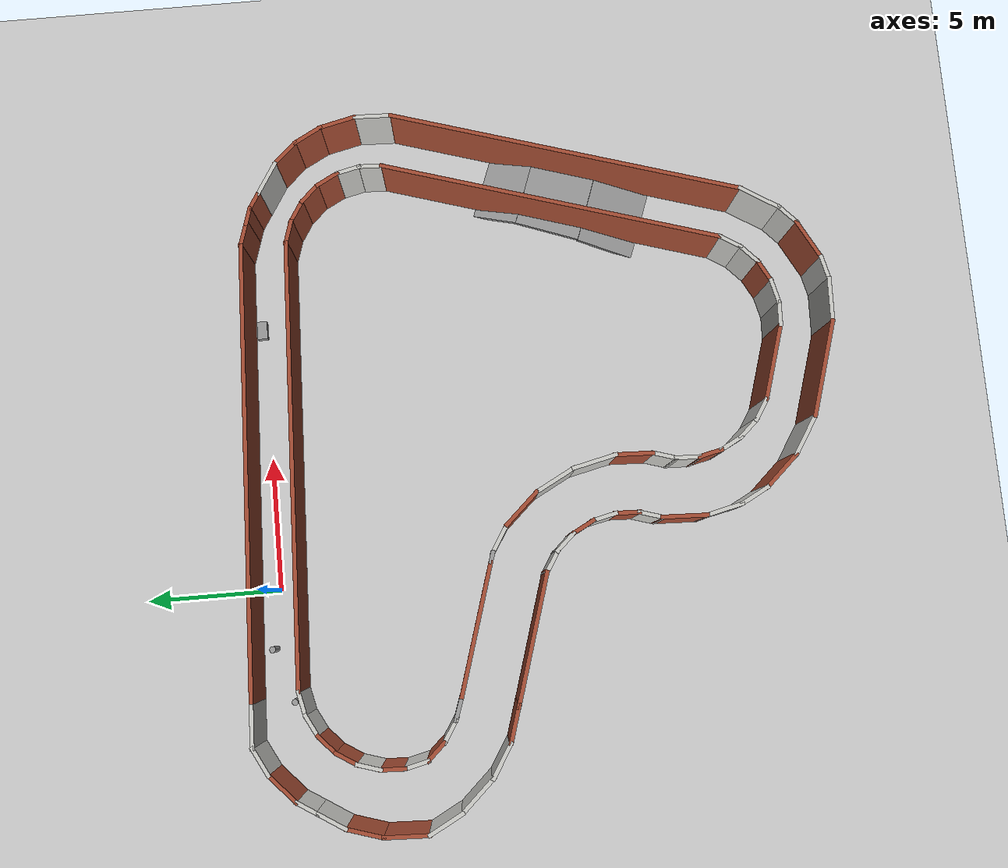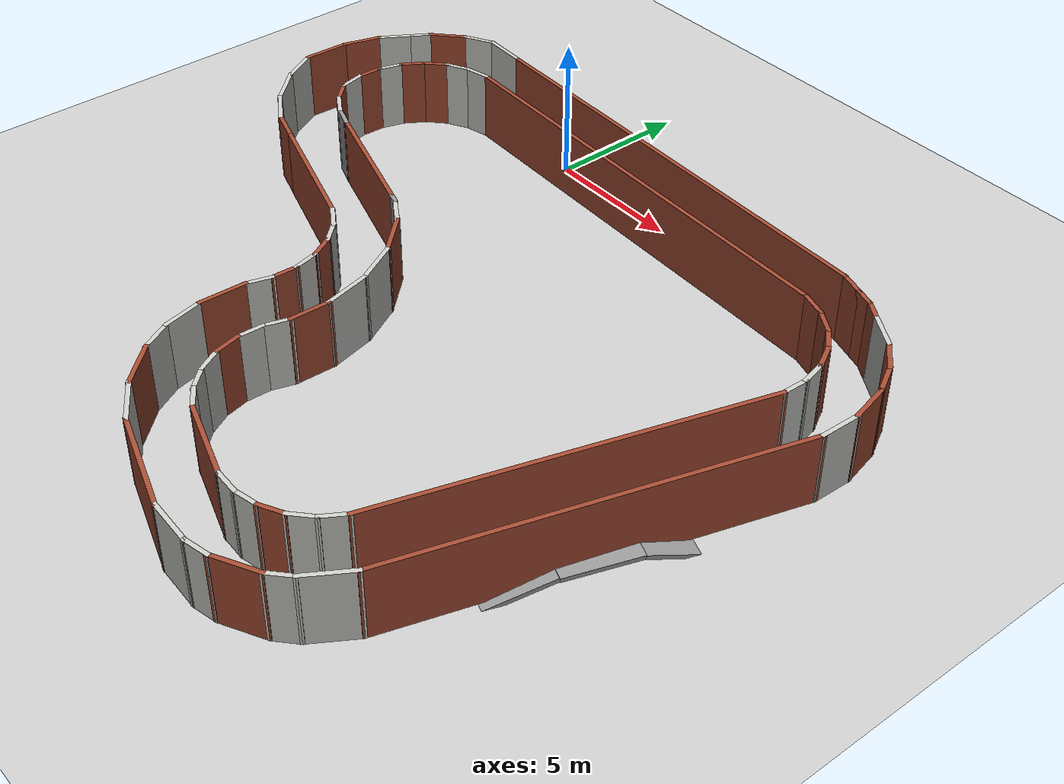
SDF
<sdf version="1.6">
 <world name="default">
  <light name="sun" type="directional">
   <pose>0 0 10 0 -0 0</pose>
   <diffuse>0.8 0.8 0.8 1</diffuse>
   <specular>0.1 0.1 0.1 1</specular>
   <attenuation>
    <range>1000</range>
    <constant>0.9</constant>
    <linear>0.01</linear>
    <quadratic>0.001</quadratic>
   </attenuation>
   <direction>-0.5 0.5 -1</direction>
  </light>
  <model name="ground_plane">
   <static>1</static>
   <link name="link">
    <collision name="collision">
     <geometry><plane><normal>0 0 1</normal><size>100 100</size></plane></geometry>
     <surface><friction><ode><mu>100</mu><mu2>50</mu2></ode></friction></surface>
    </collision>
    <visual name="visual">
     <cast_shadows>0</cast_shadows>
     <geometry><plane><normal>0 0 1</normal><size>100 100</size></plane></geometry>
     <material>
      <script><uri>file://media/materials/scripts/gazebo.material</uri><name>Gazebo/Grey</name></script>
     </material>
    </visual>
   </link>
  </model>
  <gravity>0 0 -9.8</gravity>
  <magnetic_field>6e-06 2.3e-05 -4.2e-05</magnetic_field>
  <atmosphere type="adiabatic"/>
  <physics name="default_physics" default="0" type="ode">
   <max_step_size>0.001</max_step_size>
   <real_time_factor>1</real_time_factor>
   <real_time_update_rate>1000</real_time_update_rate>
  </physics>
  <scene><ambient>0.4 0.4 0.4 1</ambient><background>0.7 0.7 0.7 1</background><shadows>1</shadows></scene>
  <spherical_coordinates>
   <surface_model>EARTH_WGS84</surface_model>
   <latitude_deg>0</latitude_deg>
   <longitude_deg>0</longitude_deg>
   <elevation>0</elevation>
   <heading_deg>0</heading_deg>
  </spherical_coordinates>
  <model name="simple_track">
   <pose>3.08783 -8.17714 0 0 0 -0.298455</pose>
   <link name="Wall_0">
    <collision name="Wall_0_Collision">
     <geometry><box><size>5 0.15 2.5</size></box></geometry>
     <pose>0 0 1.25 0 -0 0</pose>
    </collision>
    <visual name="Wall_0_Visual">
     <pose>0 0 1.25 0 -0 0</pose>
     <geometry><box><size>5 0.15 2.5</size></box></geometry>
     <material>
      <script><uri>file://media/materials/scripts/gazebo.material</uri><name>Gazebo/Bricks</name></script>
      <ambient>1 1 1 1</ambient>
     </material>
    </visual>
    <pose>-5.13544 -0.554128 0 0 -0 0</pose>
   </link>
   <link name="Wall_11">
    <collision name="Wall_11_Collision">
     <geometry><box><size>0.5 0.15 2.5</size></box></geometry>
     <pose>0 0 1.25 0 -0 0</pose>
    </collision>
    <visual name="Wall_11_Visual">
     <pose>0 0 1.25 0 -0 0</pose>
     <geometry><box><size>0.5 0.15 2.5</size></box></geometry>
     <material>
      <script><uri>file://media/materials/scripts/gazebo.material</uri><name>Gazebo/Grey</name></script>
      <ambient>1 1 1 1</ambient>
     </material>
    </visual>
    <pose>-2.53544 -0.554128 0 0 -0 0</pose>
   </link>
   <link name="Wall_15">
    <collision name="Wall_15_Collision">
     <geometry><box><size>1.25 0.15 2.5</size></box></geometry>
     <pose>0 0 1.25 0 -0 0</pose>
    </collision>
    <visual name="Wall_15_Visual">
     <pose>0 0 1.25 0 -0 0</pose>
     <geometry><box><size>1.25 0.15 2.5</size></box></geometry>
     <material>
      <script><uri>file://media/materials/scripts/gazebo.material</uri><name>Gazebo/CeilingTiled</name></script>
      <ambient>1 1 1 1</ambient>
     </material>
    </visual>
    <pose>-1.82919 -0.696478 0 0 0 -0.261799</pose>
   </link>
   <link name="Wall_16">
    <collision name="Wall_16_Collision">
     <geometry><box><size>1.75 0.15 2.5</size></box></geometry>
     <pose>0 0 1.25 0 -0 0</pose>
    </collision>
    <visual name="Wall_16_Visual">
     <pose>0 0 1.25 0 -0 0</pose>
     <geometry><box><size>1.75 0.15 2.5</size></box></geometry>
     <material>
      <script><uri>file://media/materials/scripts/gazebo.material</uri><name>Gazebo/Bricks</name></script>
      <ambient>1 1 1 1</ambient>
     </material>
    </visual>
    <pose>-0.605106 -1.23883 0 0 0 -0.523599</pose>
   </link>
   <link name="Wall_17">
    <collision name="Wall_17_Collision">
     <geometry><box><size>1.75 0.15 2.5</size></box></geometry>
     <pose>0 0 1.25 0 -0 0</pose>
    </collision>
    <visual name="Wall_17_Visual">
     <pose>0 0 1.25 0 -0 0</pose>
     <geometry><box><size>1.75 0.15 2.5</size></box></geometry>
     <material>
      <script><uri>file://media/materials/scripts/gazebo.material</uri><name>Gazebo/CeilingTiled</name></script>
      <ambient>1 1 1 1</ambient>
     </material>
    </visual>
    <pose>0.6534 -2.20451 0 0 0 -0.785398</pose>
   </link>
   <link name="Wall_18">
    <collision name="Wall_18_Collision">
     <geometry><box><size>1.75 0.15 2.5</size></box></geometry>
     <pose>0 0 1.25 0 -0 0</pose>
    </collision>
    <visual name="Wall_18_Visual">
     <pose>0 0 1.25 0 -0 0</pose>
     <geometry><box><size>1.75 0.15 2.5</size></box></geometry>
     <material>
      <script><uri>file://media/materials/scripts/gazebo.material</uri><name>Gazebo/CeilingTiled</name></script>
      <ambient>1 1 1 1</ambient>
     </material>
    </visual>
    <pose>1.61909 -3.46302 0 0 0 -1.0472</pose>
   </link>
   <link name="Wall_19">
    <collision name="Wall_19_Collision">
     <geometry><box><size>1.5 0.15 2.5</size></box></geometry>
     <pose>0 0 1.25 0 -0 0</pose>
    </collision>
    <visual name="Wall_19_Visual">
     <pose>0 0 1.25 0 -0 0</pose>
     <geometry><box><size>1.5 0.15 2.5</size></box></geometry>
     <material>
      <script><uri>file://media/materials/scripts/gazebo.material</uri><name>Gazebo/Bricks</name></script>
      <ambient>1 1 1 1</ambient>
     </material>
    </visual>
    <pose>2.19379 -4.80784 0 0 0 -1.309</pose>
   </link>
   <link name="Wall_2">
    <collision name="Wall_2_Collision">
     <geometry><box><size>5 0.15 2.5</size></box></geometry>
     <pose>0 0 1.25 0 -0 0</pose>
    </collision>
    <visual name="Wall_2_Visual">
     <pose>0 0 1.25 0 -0 0</pose>
     <geometry><box><size>5 0.15 2.5</size></box></geometry>
     <material>
      <script><uri>file://media/materials/scripts/gazebo.material</uri><name>Gazebo/Bricks</name></script>
      <ambient>1 1 1 1</ambient>
     </material>
    </visual>
    <pose>-5.06545 -2.59413 0 0 -0 0</pose>
   </link>
   <link name="Wall_20">
    <collision name="Wall_20_Collision">
     <geometry><box><size>1 0.15 2.5</size></box></geometry>
     <pose>0 0 1.25 0 -0 0</pose>
    </collision>
    <visual name="Wall_20_Visual">
     <pose>0 0 1.25 0 -0 0</pose>
     <geometry><box><size>1 0.15 2.5</size></box></geometry>
     <material>
      <script><uri>file://media/materials/scripts/gazebo.material</uri><name>Gazebo/CeilingTiled</name></script>
      <ambient>1 1 1 1</ambient>
     </material>
    </visual>
    <pose>2.36849 -5.88484 0 0 0 -1.5708</pose>
   </link>
   <link name="Wall_23">
    <collision name="Wall_23_Collision">
     <geometry><box><size>1 0.15 2.5</size></box></geometry>
     <pose>0 0 1.25 0 -0 0</pose>
    </collision>
    <visual name="Wall_23_Visual">
     <pose>0 0 1.25 0 -0 0</pose>
     <geometry><box><size>1 0.15 2.5</size></box></geometry>
     <material>
      <script><uri>file://media/materials/scripts/gazebo.material</uri><name>Gazebo/CeilingTiled</name></script>
      <ambient>1 1 1 1</ambient>
     </material>
    </visual>
    <pose>2.47849 -6.72036 0 0 0 -1.309</pose>
   </link>
   <link name="Wall_24">
    <collision name="Wall_24_Collision">
     <geometry><box><size>1 0.15 2.5</size></box></geometry>
     <pose>0 0 1.25 0 -0 0</pose>
    </collision>
    <visual name="Wall_24_Visual">
     <pose>0 0 1.25 0 -0 0</pose>
     <geometry><box><size>1 0.15 2.5</size></box></geometry>
     <material>
      <script><uri>file://media/materials/scripts/gazebo.material</uri><name>Gazebo/Bricks</name></script>
      <ambient>1 1 1 1</ambient>
     </material>
    </visual>
    <pose>2.80099 -7.49894 0 0 0 -1.0472</pose>
   </link>
   <link name="Wall_25">
    <collision name="Wall_25_Collision">
     <geometry><box><size>1 0.15 2.5</size></box></geometry>
     <pose>0 0 1.25 0 -0 0</pose>
    </collision>
    <visual name="Wall_25_Visual">
     <pose>0 0 1.25 0 -0 0</pose>
     <geometry><box><size>1 0.15 2.5</size></box></geometry>
     <material>
      <script><uri>file://media/materials/scripts/gazebo.material</uri><name>Gazebo/CeilingTiled</name></script>
      <ambient>1 1 1 1</ambient>
     </material>
    </visual>
    <pose>3.31401 -8.16752 0 0 0 -0.785398</pose>
   </link>
   <link name="Wall_26">
    <collision name="Wall_26_Collision">
     <geometry><box><size>1 0.15 2.5</size></box></geometry>
     <pose>0 0 1.25 0 -0 0</pose>
    </collision>
    <visual name="Wall_26_Visual">
     <pose>0 0 1.25 0 -0 0</pose>
     <geometry><box><size>1 0.15 2.5</size></box></geometry>
     <material>
      <script><uri>file://media/materials/scripts/gazebo.material</uri><name>Gazebo/CeilingTiled</name></script>
      <ambient>1 1 1 1</ambient>
     </material>
    </visual>
    <pose>3.98259 -8.68054 0 0 0 -0.523599</pose>
   </link>
   <link name="Wall_27">
    <collision name="Wall_27_Collision">
     <geometry><box><size>1 0.15 2.5</size></box></geometry>
     <pose>0 0 1.25 0 -0 0</pose>
    </collision>
    <visual name="Wall_27_Visual">
     <pose>0 0 1.25 0 -0 0</pose>
     <geometry><box><size>1 0.15 2.5</size></box></geometry>
     <material>
      <script><uri>file://media/materials/scripts/gazebo.material</uri><name>Gazebo/CeilingTiled</name></script>
      <ambient>1 1 1 1</ambient>
     </material>
    </visual>
    <pose>4.76117 -9.00304 0 0 0 -0.261799</pose>
   </link>
   <link name="Wall_28">
    <collision name="Wall_28_Collision">
     <geometry><box><size>3 0.15 2.5</size></box></geometry>
     <pose>0 0 1.25 0 -0 0</pose>
    </collision>
    <visual name="Wall_28_Visual">
     <pose>0 0 1.25 0 -0 0</pose>
     <geometry><box><size>3 0.15 2.5</size></box></geometry>
     <material>
      <script><uri>file://media/materials/scripts/gazebo.material</uri><name>Gazebo/Bricks</name></script>
      <ambient>1 1 1 1</ambient>
     </material>
    </visual>
    <pose>6.59669 -9.11304 0 0 -0 0</pose>
   </link>
   <link name="Wall_29">
    <collision name="Wall_29_Collision">
     <geometry><box><size>1 0.15 2.5</size></box></geometry>
     <pose>0 0 1.25 0 -0 0</pose>
    </collision>
    <visual name="Wall_29_Visual">
     <pose>0 0 1.25 0 -0 0</pose>
     <geometry><box><size>1 0.15 2.5</size></box></geometry>
     <material>
      <script><uri>file://media/materials/scripts/gazebo.material</uri><name>Gazebo/CeilingTiled</name></script>
      <ambient>1 1 1 1</ambient>
     </material>
    </visual>
    <pose>8.4322 -9.00304 0 0 -0 0.261799</pose>
   </link>
   <link name="Wall_30">
    <collision name="Wall_30_Collision">
     <geometry><box><size>1 0.15 2.5</size></box></geometry>
     <pose>0 0 1.25 0 -0 0</pose>
    </collision>
    <visual name="Wall_30_Visual">
     <pose>0 0 1.25 0 -0 0</pose>
     <geometry><box><size>1 0.15 2.5</size></box></geometry>
     <material>
      <script><uri>file://media/materials/scripts/gazebo.material</uri><name>Gazebo/CeilingTiled</name></script>
      <ambient>1 1 1 1</ambient>
     </material>
    </visual>
    <pose>9.21078 -8.68054 0 0 -0 0.523599</pose>
   </link>
   <link name="Wall_31">
    <collision name="Wall_31_Collision">
     <geometry><box><size>1 0.15 2.5</size></box></geometry>
     <pose>0 0 1.25 0 -0 0</pose>
    </collision>
    <visual name="Wall_31_Visual">
     <pose>0 0 1.25 0 -0 0</pose>
     <geometry><box><size>1 0.15 2.5</size></box></geometry>
     <material>
      <script><uri>file://media/materials/scripts/gazebo.material</uri><name>Gazebo/Bricks</name></script>
      <ambient>1 1 1 1</ambient>
     </material>
    </visual>
    <pose>9.87936 -8.16752 0 0 -0 0.785398</pose>
   </link>
   <link name="Wall_32">
    <collision name="Wall_32_Collision">
     <geometry><box><size>1 0.15 2.5</size></box></geometry>
     <pose>0 0 1.25 0 -0 0</pose>
    </collision>
    <visual name="Wall_32_Visual">
     <pose>0 0 1.25 0 -0 0</pose>
     <geometry><box><size>1 0.15 2.5</size></box></geometry>
     <material>
      <script><uri>file://media/materials/scripts/gazebo.material</uri><name>Gazebo/CeilingTiled</name></script>
      <ambient>1 1 1 1</ambient>
     </material>
    </visual>
    <pose>10.3924 -7.49894 0 0 -0 1.0472</pose>
   </link>
   <link name="Wall_33">
    <collision name="Wall_33_Collision">
     <geometry><box><size>1 0.15 2.5</size></box></geometry>
     <pose>0 0 1.25 0 -0 0</pose>
    </collision>
    <visual name="Wall_33_Visual">
     <pose>0 0 1.25 0 -0 0</pose>
     <geometry><box><size>1 0.15 2.5</size></box></geometry>
     <material>
      <script><uri>file://media/materials/scripts/gazebo.material</uri><name>Gazebo/CeilingTiled</name></script>
      <ambient>1 1 1 1</ambient>
     </material>
    </visual>
    <pose>10.7149 -6.72036 0 0 -0 1.309</pose>
   </link>
   <link name="Wall_34">
    <collision name="Wall_34_Collision">
     <geometry><box><size>13 0.15 2.5</size></box></geometry>
     <pose>0 0 1.25 0 -0 0</pose>
    </collision>
    <visual name="Wall_34_Visual">
     <pose>0 0 1.25 0 -0 0</pose>
     <geometry><box><size>13 0.15 2.5</size></box></geometry>
     <material>
      <script><uri>file://media/materials/scripts/gazebo.material</uri><name>Gazebo/Bricks</name></script>
      <ambient>1 1 1 1</ambient>
     </material>
    </visual>
    <pose>10.8249 0.11516 0 0 -0 1.5708</pose>
   </link>
   <link name="Wall_35">
    <collision name="Wall_35_Collision">
     <geometry><box><size>1 0.15 2.5</size></box></geometry>
     <pose>0 0 1.25 0 -0 0</pose>
    </collision>
    <visual name="Wall_35_Visual">
     <pose>0 0 1.25 0 -0 0</pose>
     <geometry><box><size>1 0.15 2.5</size></box></geometry>
     <material>
      <script><uri>file://media/materials/scripts/gazebo.material</uri><name>Gazebo/CeilingTiled</name></script>
      <ambient>1 1 1 1</ambient>
     </material>
    </visual>
    <pose>10.7149 6.95068 0 0 -0 1.8326</pose>
   </link>
   <link name="Wall_36">
    <collision name="Wall_36_Collision">
     <geometry><box><size>1 0.15 2.5</size></box></geometry>
     <pose>0 0 1.25 0 -0 0</pose>
    </collision>
    <visual name="Wall_36_Visual">
     <pose>0 0 1.25 0 -0 0</pose>
     <geometry><box><size>1 0.15 2.5</size></box></geometry>
     <material>
      <script><uri>file://media/materials/scripts/gazebo.material</uri><name>Gazebo/CeilingTiled</name></script>
      <ambient>1 1 1 1</ambient>
     </material>
    </visual>
    <pose>10.3924 7.72926 0 0 -0 2.0944</pose>
   </link>
   <link name="Wall_37">
    <collision name="Wall_37_Collision">
     <geometry><box><size>1 0.15 2.5</size></box></geometry>
     <pose>0 0 1.25 0 -0 0</pose>
    </collision>
    <visual name="Wall_37_Visual">
     <pose>0 0 1.25 0 -0 0</pose>
     <geometry><box><size>1 0.15 2.5</size></box></geometry>
     <material>
      <script><uri>file://media/materials/scripts/gazebo.material</uri><name>Gazebo/Bricks</name></script>
      <ambient>1 1 1 1</ambient>
     </material>
    </visual>
    <pose>9.87936 8.39784 0 0 -0 2.35619</pose>
   </link>
   <link name="Wall_38">
    <collision name="Wall_38_Collision">
     <geometry><box><size>1 0.15 2.5</size></box></geometry>
     <pose>0 0 1.25 0 -0 0</pose>
    </collision>
    <visual name="Wall_38_Visual">
     <pose>0 0 1.25 0 -0 0</pose>
     <geometry><box><size>1 0.15 2.5</size></box></geometry>
     <material>
      <script><uri>file://media/materials/scripts/gazebo.material</uri><name>Gazebo/Bricks</name></script>
      <ambient>1 1 1 1</ambient>
     </material>
    </visual>
    <pose>9.21078 8.91086 0 0 -0 2.61799</pose>
   </link>
   <link name="Wall_39">
    <collision name="Wall_39_Collision">
     <geometry><box><size>1 0.15 2.5</size></box></geometry>
     <pose>0 0 1.25 0 -0 0</pose>
    </collision>
    <visual name="Wall_39_Visual">
     <pose>0 0 1.25 0 -0 0</pose>
     <geometry><box><size>1 0.15 2.5</size></box></geometry>
     <material>
      <script><uri>file://media/materials/scripts/gazebo.material</uri><name>Gazebo/Bricks</name></script>
      <ambient>1 1 1 1</ambient>
     </material>
    </visual>
    <pose>8.4322 9.23336 0 0 -0 2.87979</pose>
   </link>
   <link name="Wall_4">
    <collision name="Wall_4_Collision">
     <geometry><box><size>1 0.15 2.5</size></box></geometry>
     <pose>0 0 1.25 0 -0 0</pose>
    </collision>
    <visual name="Wall_4_Visual">
     <pose>0 0 1.25 0 -0 0</pose>
     <geometry><box><size>1 0.15 2.5</size></box></geometry>
     <material>
      <script><uri>file://media/materials/scripts/gazebo.material</uri><name>Gazebo/CeilingTiled</name></script>
      <ambient>1 1 1 1</ambient>
     </material>
    </visual>
    <pose>-2.22993 -2.70413 0 0 0 -0.261799</pose>
   </link>
   <link name="Wall_40">
    <collision name="Wall_40_Collision">
     <geometry><box><size>1 0.15 2.5</size></box></geometry>
     <pose>0 0 1.25 0 -0 0</pose>
    </collision>
    <visual name="Wall_40_Visual">
     <pose>0 0 1.25 0 -0 0</pose>
     <geometry><box><size>1 0.15 2.5</size></box></geometry>
     <material>
      <script><uri>file://media/materials/scripts/gazebo.material</uri><name>Gazebo/Bricks</name></script>
      <ambient>1 1 1 1</ambient>
     </material>
    </visual>
    <pose>7.59669 9.34336 0 0 -0 3.14159</pose>
   </link>
   <link name="Wall_41">
    <collision name="Wall_41_Collision">
     <geometry><box><size>16.5 0.15 2.5</size></box></geometry>
     <pose>0 0 1.25 0 -0 0</pose>
    </collision>
    <visual name="Wall_41_Visual">
     <pose>0 0 1.25 0 -0 0</pose>
     <geometry><box><size>16.5 0.15 2.5</size></box></geometry>
     <material>
      <script><uri>file://media/materials/scripts/gazebo.material</uri><name>Gazebo/Bricks</name></script>
      <ambient>1 1 1 1</ambient>
     </material>
    </visual>
    <pose>-0.724757 7.22751 0 0 0 -2.87979</pose>
   </link>
   <link name="Wall_42">
    <collision name="Wall_42_Collision">
     <geometry><box><size>1 0.15 2.5</size></box></geometry>
     <pose>0 0 1.25 0 -0 0</pose>
    </collision>
    <visual name="Wall_42_Visual">
     <pose>0 0 1.25 0 -0 0</pose>
     <geometry><box><size>1 0.15 2.5</size></box></geometry>
     <material>
      <script><uri>file://media/materials/scripts/gazebo.material</uri><name>Gazebo/CeilingTiled</name></script>
      <ambient>1 1 1 1</ambient>
     </material>
    </visual>
    <pose>-8.98926 4.89916 0 0 0 -2.61799</pose>
   </link>
   <link name="Wall_43">
    <collision name="Wall_43_Collision">
     <geometry><box><size>1 0.15 2.5</size></box></geometry>
     <pose>0 0 1.25 0 -0 0</pose>
    </collision>
    <visual name="Wall_43_Visual">
     <pose>0 0 1.25 0 -0 0</pose>
     <geometry><box><size>1 0.15 2.5</size></box></geometry>
     <material>
      <script><uri>file://media/materials/scripts/gazebo.material</uri><name>Gazebo/CeilingTiled</name></script>
      <ambient>1 1 1 1</ambient>
     </material>
    </visual>
    <pose>-9.65784 4.38614 0 0 0 -2.35619</pose>
   </link>
   <link name="Wall_44">
    <collision name="Wall_44_Collision">
     <geometry><box><size>1 0.15 2.5</size></box></geometry>
     <pose>0 0 1.25 0 -0 0</pose>
    </collision>
    <visual name="Wall_44_Visual">
     <pose>0 0 1.25 0 -0 0</pose>
     <geometry><box><size>1 0.15 2.5</size></box></geometry>
     <material>
      <script><uri>file://media/materials/scripts/gazebo.material</uri><name>Gazebo/Bricks</name></script>
      <ambient>1 1 1 1</ambient>
     </material>
    </visual>
    <pose>-10.1709 3.71756 0 0 0 -2.0944</pose>
   </link>
   <link name="Wall_45">
    <collision name="Wall_45_Collision">
     <geometry><box><size>1 0.15 2.5</size></box></geometry>
     <pose>0 0 1.25 0 -0 0</pose>
    </collision>
    <visual name="Wall_45_Visual">
     <pose>0 0 1.25 0 -0 0</pose>
     <geometry><box><size>1 0.15 2.5</size></box></geometry>
     <material>
      <script><uri>file://media/materials/scripts/gazebo.material</uri><name>Gazebo/Bricks</name></script>
      <ambient>1 1 1 1</ambient>
     </material>
    </visual>
    <pose>-10.4934 2.93898 0 0 0 -1.8326</pose>
   </link>
   <link name="Wall_46">
    <collision name="Wall_46_Collision">
     <geometry><box><size>1 0.15 2.5</size></box></geometry>
     <pose>0 0 1.25 0 -0 0</pose>
    </collision>
    <visual name="Wall_46_Visual">
     <pose>0 0 1.25 0 -0 0</pose>
     <geometry><box><size>1 0.15 2.5</size></box></geometry>
     <material>
      <script><uri>file://media/materials/scripts/gazebo.material</uri><name>Gazebo/CeilingTiled</name></script>
      <ambient>1 1 1 1</ambient>
     </material>
    </visual>
    <pose>-10.6034 2.10346 0 0 0 -1.5708</pose>
   </link>
   <link name="Wall_47">
    <collision name="Wall_47_Collision">
     <geometry><box><size>1 0.15 2.5</size></box></geometry>
     <pose>0 0 1.25 0 -0 0</pose>
    </collision>
    <visual name="Wall_47_Visual">
     <pose>0 0 1.25 0 -0 0</pose>
     <geometry><box><size>1 0.15 2.5</size></box></geometry>
     <material>
      <script><uri>file://media/materials/scripts/gazebo.material</uri><name>Gazebo/Bricks</name></script>
      <ambient>1 1 1 1</ambient>
     </material>
    </visual>
    <pose>-10.4934 1.26795 0 0 0 -1.309</pose>
   </link>
   <link name="Wall_48">
    <collision name="Wall_48_Collision">
     <geometry><box><size>1 0.15 2.5</size></box></geometry>
     <pose>0 0 1.25 0 -0 0</pose>
    </collision>
    <visual name="Wall_48_Visual">
     <pose>0 0 1.25 0 -0 0</pose>
     <geometry><box><size>1 0.15 2.5</size></box></geometry>
     <material>
      <script><uri>file://media/materials/scripts/gazebo.material</uri><name>Gazebo/CeilingTiled</name></script>
      <ambient>1 1 1 1</ambient>
     </material>
    </visual>
    <pose>-10.1709 0.489367 0 0 0 -1.0472</pose>
   </link>
   <link name="Wall_49">
    <collision name="Wall_49_Collision">
     <geometry><box><size>1 0.15 2.5</size></box></geometry>
     <pose>0 0 1.25 0 -0 0</pose>
    </collision>
    <visual name="Wall_49_Visual">
     <pose>0 0 1.25 0 -0 0</pose>
     <geometry><box><size>1 0.15 2.5</size></box></geometry>
     <material>
      <script><uri>file://media/materials/scripts/gazebo.material</uri><name>Gazebo/Bricks</name></script>
      <ambient>1 1 1 1</ambient>
     </material>
    </visual>
    <pose>-9.5903 -0.091194 0 0 0 -0.523599</pose>
   </link>
   <link name="Wall_5">
    <collision name="Wall_5_Collision">
     <geometry><box><size>1 0.15 2.5</size></box></geometry>
     <pose>0 0 1.25 0 -0 0</pose>
    </collision>
    <visual name="Wall_5_Visual">
     <pose>0 0 1.25 0 -0 0</pose>
     <geometry><box><size>1 0.15 2.5</size></box></geometry>
     <material>
      <script><uri>file://media/materials/scripts/gazebo.material</uri><name>Gazebo/CeilingTiled</name></script>
      <ambient>1 1 1 1</ambient>
     </material>
    </visual>
    <pose>-1.45135 -3.02662 0 0 0 -0.523599</pose>
   </link>
   <link name="Wall_50">
    <collision name="Wall_50_Collision">
     <geometry><box><size>1 0.15 2.5</size></box></geometry>
     <pose>0 0 1.25 0 -0 0</pose>
    </collision>
    <visual name="Wall_50_Visual">
     <pose>0 0 1.25 0 -0 0</pose>
     <geometry><box><size>1 0.15 2.5</size></box></geometry>
     <material>
      <script><uri>file://media/materials/scripts/gazebo.material</uri><name>Gazebo/CeilingTiled</name></script>
      <ambient>1 1 1 1</ambient>
     </material>
    </visual>
    <pose>-8.81172 -0.413692 0 0 0 -0.261799</pose>
   </link>
   <link name="Wall_51">
    <collision name="Wall_51_Collision">
     <geometry><box><size>0.991311 0.15 2.5</size></box></geometry>
     <pose>0 0 1.25 0 -0 0</pose>
    </collision>
    <visual name="Wall_51_Visual">
     <pose>0 0 1.25 0 -0 0</pose>
     <geometry><box><size>0.991311 0.15 2.5</size></box></geometry>
     <material>
      <script><uri>file://media/materials/scripts/gazebo.material</uri><name>Gazebo/Grey</name></script>
      <ambient>1 1 1 1</ambient>
     </material>
    </visual>
    <pose>-7.98082 -0.538909 0 0 0 -0.036187</pose>
   </link>
   <link name="Wall_53">
    <collision name="Wall_53_Collision">
     <geometry><box><size>1.75 0.15 2.5</size></box></geometry>
     <pose>0 0 1.25 0 -0 0</pose>
    </collision>
    <visual name="Wall_53_Visual">
     <pose>0 0 1.25 0 -0 0</pose>
     <geometry><box><size>1.75 0.15 2.5</size></box></geometry>
     <material>
      <script><uri>file://media/materials/scripts/gazebo.material</uri><name>Gazebo/Bricks</name></script>
      <ambient>1 1 1 1</ambient>
     </material>
    </visual>
    <pose>0.369806 -7.02006 0 0 0 -1.309</pose>
   </link>
   <link name="Wall_54">
    <collision name="Wall_54_Collision">
     <geometry><box><size>1.5 0.15 2.5</size></box></geometry>
     <pose>0 0 1.25 0 -0 0</pose>
    </collision>
    <visual name="Wall_54_Visual">
     <pose>0 0 1.25 0 -0 0</pose>
     <geometry><box><size>1.5 0.15 2.5</size></box></geometry>
     <material>
      <script><uri>file://media/materials/scripts/gazebo.material</uri><name>Gazebo/CeilingTiled</name></script>
      <ambient>1 1 1 1</ambient>
     </material>
    </visual>
    <pose>0.914361 -8.37737 0 0 0 -1.0472</pose>
   </link>
   <link name="Wall_55">
    <collision name="Wall_55_Collision">
     <geometry><box><size>1.25 0.15 2.5</size></box></geometry>
     <pose>0 0 1.25 0 -0 0</pose>
    </collision>
    <visual name="Wall_55_Visual">
     <pose>0 0 1.25 0 -0 0</pose>
     <geometry><box><size>1.25 0.15 2.5</size></box></geometry>
     <material>
      <script><uri>file://media/materials/scripts/gazebo.material</uri><name>Gazebo/CeilingTiled</name></script>
      <ambient>1 1 1 1</ambient>
     </material>
    </visual>
    <pose>1.64077 -9.35085 0 0 0 -0.785398</pose>
   </link>
   <link name="Wall_56">
    <collision name="Wall_56_Collision">
     <geometry><box><size>1.75 0.15 2.5</size></box></geometry>
     <pose>0 0 1.25 0 -0 0</pose>
    </collision>
    <visual name="Wall_56_Visual">
     <pose>0 0 1.25 0 -0 0</pose>
     <geometry><box><size>1.75 0.15 2.5</size></box></geometry>
     <material>
      <script><uri>file://media/materials/scripts/gazebo.material</uri><name>Gazebo/Bricks</name></script>
      <ambient>1 1 1 1</ambient>
     </material>
    </visual>
    <pose>2.7225 -10.1398 0 0 0 -0.523599</pose>
   </link>
   <link name="Wall_57">
    <collision name="Wall_57_Collision">
     <geometry><box><size>1.75 0.15 2.5</size></box></geometry>
     <pose>0 0 1.25 0 -0 0</pose>
    </collision>
    <visual name="Wall_57_Visual">
     <pose>0 0 1.25 0 -0 0</pose>
     <geometry><box><size>1.75 0.15 2.5</size></box></geometry>
     <material>
      <script><uri>file://media/materials/scripts/gazebo.material</uri><name>Gazebo/CeilingTiled</name></script>
      <ambient>1 1 1 1</ambient>
     </material>
    </visual>
    <pose>4.18806 -10.7468 0 0 0 -0.261799</pose>
   </link>
   <link name="Wall_58">
    <collision name="Wall_58_Collision">
     <geometry><box><size>3.75 0.15 2.5</size></box></geometry>
     <pose>0 0 1.25 0 -0 0</pose>
    </collision>
    <visual name="Wall_58_Visual">
     <pose>0 0 1.25 0 -0 0</pose>
     <geometry><box><size>3.75 0.15 2.5</size></box></geometry>
     <material>
      <script><uri>file://media/materials/scripts/gazebo.material</uri><name>Gazebo/Bricks</name></script>
      <ambient>1 1 1 1</ambient>
     </material>
    </visual>
    <pose>6.7608 -10.9539 0 0 -0 0</pose>
   </link>
   <link name="Wall_59">
    <collision name="Wall_59_Collision">
     <geometry><box><size>1.75 0.15 2.5</size></box></geometry>
     <pose>0 0 1.25 0 -0 0</pose>
    </collision>
    <visual name="Wall_59_Visual">
     <pose>0 0 1.25 0 -0 0</pose>
     <geometry><box><size>1.75 0.15 2.5</size></box></geometry>
     <material>
      <script><uri>file://media/materials/scripts/gazebo.material</uri><name>Gazebo/CeilingTiled</name></script>
      <ambient>1 1 1 1</ambient>
     </material>
    </visual>
    <pose>9.33354 -10.7468 0 0 -0 0.261799</pose>
   </link>
   <link name="Wall_6">
    <collision name="Wall_6_Collision">
     <geometry><box><size>1 0.15 2.5</size></box></geometry>
     <pose>0 0 1.25 0 -0 0</pose>
    </collision>
    <visual name="Wall_6_Visual">
     <pose>0 0 1.25 0 -0 0</pose>
     <geometry><box><size>1 0.15 2.5</size></box></geometry>
     <material>
      <script><uri>file://media/materials/scripts/gazebo.material</uri><name>Gazebo/Bricks</name></script>
      <ambient>1 1 1 1</ambient>
     </material>
    </visual>
    <pose>-0.782766 -3.53964 0 0 0 -0.785398</pose>
   </link>
   <link name="Wall_60">
    <collision name="Wall_60_Collision">
     <geometry><box><size>1 0.15 2.5</size></box></geometry>
     <pose>0 0 1.25 0 -0 0</pose>
    </collision>
    <visual name="Wall_60_Visual">
     <pose>0 0 1.25 0 -0 0</pose>
     <geometry><box><size>1 0.15 2.5</size></box></geometry>
     <material>
      <script><uri>file://media/materials/scripts/gazebo.material</uri><name>Gazebo/CeilingTiled</name></script>
      <ambient>1 1 1 1</ambient>
     </material>
    </visual>
    <pose>10.4743 -10.3273 0 0 -0 0.523599</pose>
   </link>
   <link name="Wall_61">
    <collision name="Wall_61_Collision">
     <geometry><box><size>1.75 0.15 2.5</size></box></geometry>
     <pose>0 0 1.25 0 -0 0</pose>
    </collision>
    <visual name="Wall_61_Visual">
     <pose>0 0 1.25 0 -0 0</pose>
     <geometry><box><size>1.75 0.15 2.5</size></box></geometry>
     <material>
      <script><uri>file://media/materials/scripts/gazebo.material</uri><name>Gazebo/Bricks</name></script>
      <ambient>1 1 1 1</ambient>
     </material>
    </visual>
    <pose>11.4081 -9.54907 0 0 -0 0.785398</pose>
   </link>
   <link name="Wall_62">
    <collision name="Wall_62_Collision">
     <geometry><box><size>1 0.15 2.5</size></box></geometry>
     <pose>0 0 1.25 0 -0 0</pose>
    </collision>
    <visual name="Wall_62_Visual">
     <pose>0 0 1.25 0 -0 0</pose>
     <geometry><box><size>1 0.15 2.5</size></box></geometry>
     <material>
      <script><uri>file://media/materials/scripts/gazebo.material</uri><name>Gazebo/CeilingTiled</name></script>
      <ambient>1 1 1 1</ambient>
     </material>
    </visual>
    <pose>12.1863 -8.61533 0 0 -0 1.0472</pose>
   </link>
   <link name="Wall_63">
    <collision name="Wall_63_Collision">
     <geometry><box><size>1.75 0.15 2.5</size></box></geometry>
     <pose>0 0 1.25 0 -0 0</pose>
    </collision>
    <visual name="Wall_63_Visual">
     <pose>0 0 1.25 0 -0 0</pose>
     <geometry><box><size>1.75 0.15 2.5</size></box></geometry>
     <material>
      <script><uri>file://media/materials/scripts/gazebo.material</uri><name>Gazebo/CeilingTiled</name></script>
      <ambient>1 1 1 1</ambient>
     </material>
    </visual>
    <pose>12.6058 -7.47452 0 0 -0 1.309</pose>
   </link>
   <link name="Wall_64">
    <collision name="Wall_64_Collision">
     <geometry><box><size>13.5 0.15 2.5</size></box></geometry>
     <pose>0 0 1.25 0 -0 0</pose>
    </collision>
    <visual name="Wall_64_Visual">
     <pose>0 0 1.25 0 -0 0</pose>
     <geometry><box><size>13.5 0.15 2.5</size></box></geometry>
     <material>
      <script><uri>file://media/materials/scripts/gazebo.material</uri><name>Gazebo/Bricks</name></script>
      <ambient>1 1 1 1</ambient>
     </material>
    </visual>
    <pose>12.8129 -0.026783 0 0 -0 1.5708</pose>
   </link>
   <link name="Wall_65">
    <collision name="Wall_65_Collision">
     <geometry><box><size>1.5 0.15 2.5</size></box></geometry>
     <pose>0 0 1.25 0 -0 0</pose>
    </collision>
    <visual name="Wall_65_Visual">
     <pose>0 0 1.25 0 -0 0</pose>
     <geometry><box><size>1.5 0.15 2.5</size></box></geometry>
     <material>
      <script><uri>file://media/materials/scripts/gazebo.material</uri><name>Gazebo/CeilingTiled</name></script>
      <ambient>1 1 1 1</ambient>
     </material>
    </visual>
    <pose>12.6382 7.30022 0 0 -0 1.8326</pose>
   </link>
   <link name="Wall_66">
    <collision name="Wall_66_Collision">
     <geometry><box><size>1.5 0.15 2.5</size></box></geometry>
     <pose>0 0 1.25 0 -0 0</pose>
    </collision>
    <visual name="Wall_66_Visual">
     <pose>0 0 1.25 0 -0 0</pose>
     <geometry><box><size>1.5 0.15 2.5</size></box></geometry>
     <material>
      <script><uri>file://media/materials/scripts/gazebo.material</uri><name>Gazebo/Bricks</name></script>
      <ambient>1 1 1 1</ambient>
     </material>
    </visual>
    <pose>12.126 8.53679 0 0 -0 2.0944</pose>
   </link>
   <link name="Wall_67">
    <collision name="Wall_67_Collision">
     <geometry><box><size>1.25 0.15 2.5</size></box></geometry>
     <pose>0 0 1.25 0 -0 0</pose>
    </collision>
    <visual name="Wall_67_Visual">
     <pose>0 0 1.25 0 -0 0</pose>
     <geometry><box><size>1.25 0.15 2.5</size></box></geometry>
     <material>
      <script><uri>file://media/materials/scripts/gazebo.material</uri><name>Gazebo/Bricks</name></script>
      <ambient>1 1 1 1</ambient>
     </material>
    </visual>
    <pose>11.3996 9.51026 0 0 -0 2.35619</pose>
   </link>
   <link name="Wall_68">
    <collision name="Wall_68_Collision">
     <geometry><box><size>1.25 0.15 2.5</size></box></geometry>
     <pose>0 0 1.25 0 -0 0</pose>
    </collision>
    <visual name="Wall_68_Visual">
     <pose>0 0 1.25 0 -0 0</pose>
     <geometry><box><size>1.25 0.15 2.5</size></box></geometry>
     <material>
      <script><uri>file://media/materials/scripts/gazebo.material</uri><name>Gazebo/Bricks</name></script>
      <ambient>1 1 1 1</ambient>
     </material>
    </visual>
    <pose>10.5343 10.1742 0 0 -0 2.61799</pose>
   </link>
   <link name="Wall_69">
    <collision name="Wall_69_Collision">
     <geometry><box><size>1.5 0.15 2.5</size></box></geometry>
     <pose>0 0 1.25 0 -0 0</pose>
    </collision>
    <visual name="Wall_69_Visual">
     <pose>0 0 1.25 0 -0 0</pose>
     <geometry><box><size>1.5 0.15 2.5</size></box></geometry>
     <material>
      <script><uri>file://media/materials/scripts/gazebo.material</uri><name>Gazebo/CeilingTiled</name></script>
      <ambient>1 1 1 1</ambient>
     </material>
    </visual>
    <pose>9.40603 10.6239 0 0 -0 2.87979</pose>
   </link>
   <link name="Wall_7">
    <collision name="Wall_7_Collision">
     <geometry><box><size>1 0.15 2.5</size></box></geometry>
     <pose>0 0 1.25 0 -0 0</pose>
    </collision>
    <visual name="Wall_7_Visual">
     <pose>0 0 1.25 0 -0 0</pose>
     <geometry><box><size>1 0.15 2.5</size></box></geometry>
     <material>
      <script><uri>file://media/materials/scripts/gazebo.material</uri><name>Gazebo/CeilingTiled</name></script>
      <ambient>1 1 1 1</ambient>
     </material>
    </visual>
    <pose>-0.269745 -4.20822 0 0 0 -1.0472</pose>
   </link>
   <link name="Wall_70">
    <collision name="Wall_70_Collision">
     <geometry><box><size>0.75 0.15 2.5</size></box></geometry>
     <pose>0 0 1.25 0 -0 0</pose>
    </collision>
    <visual name="Wall_70_Visual">
     <pose>0 0 1.25 0 -0 0</pose>
     <geometry><box><size>0.75 0.15 2.5</size></box></geometry>
     <material>
      <script><uri>file://media/materials/scripts/gazebo.material</uri><name>Gazebo/Bricks</name></script>
      <ambient>1 1 1 1</ambient>
     </material>
    </visual>
    <pose>8.46426 10.8762 0 0 -0 2.87979</pose>
   </link>
   <link name="Wall_71">
    <collision name="Wall_71_Collision">
     <geometry><box><size>0.75 0.15 2.5</size></box></geometry>
     <pose>0 0 1.25 0 -0 0</pose>
    </collision>
    <visual name="Wall_71_Visual">
     <pose>0 0 1.25 0 -0 0</pose>
     <geometry><box><size>0.75 0.15 2.5</size></box></geometry>
     <material>
      <script><uri>file://media/materials/scripts/gazebo.material</uri><name>Gazebo/Bricks</name></script>
      <ambient>1 1 1 1</ambient>
     </material>
    </visual>
    <pose>7.87448 10.9539 0 0 -0 3.14159</pose>
   </link>
   <link name="Wall_72">
    <collision name="Wall_72_Collision">
     <geometry><box><size>1 0.15 2.5</size></box></geometry>
     <pose>0 0 1.25 0 -0 0</pose>
    </collision>
    <visual name="Wall_72_Visual">
     <pose>0 0 1.25 0 -0 0</pose>
     <geometry><box><size>1 0.15 2.5</size></box></geometry>
     <material>
      <script><uri>file://media/materials/scripts/gazebo.material</uri><name>Gazebo/Bricks</name></script>
      <ambient>1 1 1 1</ambient>
     </material>
    </visual>
    <pose>7.14948 10.9539 0 0 -0 3.14159</pose>
   </link>
   <link name="Wall_73">
    <collision name="Wall_73_Collision">
     <geometry><box><size>16.75 0.15 2.5</size></box></geometry>
     <pose>0 0 1.25 0 -0 0</pose>
    </collision>
    <visual name="Wall_73_Visual">
     <pose>0 0 1.25 0 -0 0</pose>
     <geometry><box><size>16.75 0.15 2.5</size></box></geometry>
     <material>
      <script><uri>file://media/materials/scripts/gazebo.material</uri><name>Gazebo/Bricks</name></script>
      <ambient>1 1 1 1</ambient>
     </material>
    </visual>
    <pose>-1.29271 8.80567 0 0 0 -2.87979</pose>
   </link>
   <link name="Wall_74">
    <collision name="Wall_74_Collision">
     <geometry><box><size>1.75 0.15 2.5</size></box></geometry>
     <pose>0 0 1.25 0 -0 0</pose>
    </collision>
    <visual name="Wall_74_Visual">
     <pose>0 0 1.25 0 -0 0</pose>
     <geometry><box><size>1.75 0.15 2.5</size></box></geometry>
     <material>
      <script><uri>file://media/materials/scripts/gazebo.material</uri><name>Gazebo/CeilingTiled</name></script>
      <ambient>1 1 1 1</ambient>
     </material>
    </visual>
    <pose>-10.0826 6.45041 0 0 0 -2.87979</pose>
   </link>
   <link name="Wall_76">
    <collision name="Wall_76_Collision">
     <geometry><box><size>1.25 0.15 2.5</size></box></geometry>
     <pose>0 0 1.25 0 -0 0</pose>
    </collision>
    <visual name="Wall_76_Visual">
     <pose>0 0 1.25 0 -0 0</pose>
     <geometry><box><size>1.25 0.15 2.5</size></box></geometry>
     <material>
      <script><uri>file://media/materials/scripts/gazebo.material</uri><name>Gazebo/CeilingTiled</name></script>
      <ambient>1 1 1 1</ambient>
     </material>
    </visual>
    <pose>-11.2443 5.85445 0 0 0 -2.35619</pose>
   </link>
   <link name="Wall_77">
    <collision name="Wall_77_Collision">
     <geometry><box><size>1.5 0.15 2.5</size></box></geometry>
     <pose>0 0 1.25 0 -0 0</pose>
    </collision>
    <visual name="Wall_77_Visual">
     <pose>0 0 1.25 0 -0 0</pose>
     <geometry><box><size>1.5 0.15 2.5</size></box></geometry>
     <material>
      <script><uri>file://media/materials/scripts/gazebo.material</uri><name>Gazebo/Bricks</name></script>
      <ambient>1 1 1 1</ambient>
     </material>
    </visual>
    <pose>-11.9707 4.88098 0 0 0 -2.0944</pose>
   </link>
   <link name="Wall_78">
    <collision name="Wall_78_Collision">
     <geometry><box><size>1 0.15 2.5</size></box></geometry>
     <pose>0 0 1.25 0 -0 0</pose>
    </collision>
    <visual name="Wall_78_Visual">
     <pose>0 0 1.25 0 -0 0</pose>
     <geometry><box><size>1 0.15 2.5</size></box></geometry>
     <material>
      <script><uri>file://media/materials/scripts/gazebo.material</uri><name>Gazebo/CeilingTiled</name></script>
      <ambient>1 1 1 1</ambient>
     </material>
    </visual>
    <pose>-12.4182 3.88589 0 0 0 -1.8326</pose>
   </link>
   <link name="Wall_79">
    <collision name="Wall_79_Collision">
     <geometry><box><size>1.25 0.15 2.5</size></box></geometry>
     <pose>0 0 1.25 0 -0 0</pose>
    </collision>
    <visual name="Wall_79_Visual">
     <pose>0 0 1.25 0 -0 0</pose>
     <geometry><box><size>1.25 0.15 2.5</size></box></geometry>
     <material>
      <script><uri>file://media/materials/scripts/gazebo.material</uri><name>Gazebo/CeilingTiled</name></script>
      <ambient>1 1 1 1</ambient>
     </material>
    </visual>
    <pose>-12.6705 2.94411 0 0 0 -1.8326</pose>
   </link>
   <link name="Wall_8">
    <collision name="Wall_8_Collision">
     <geometry><box><size>1 0.15 2.5</size></box></geometry>
     <pose>0 0 1.25 0 -0 0</pose>
    </collision>
    <visual name="Wall_8_Visual">
     <pose>0 0 1.25 0 -0 0</pose>
     <geometry><box><size>1 0.15 2.5</size></box></geometry>
     <material>
      <script><uri>file://media/materials/scripts/gazebo.material</uri><name>Gazebo/Bricks</name></script>
      <ambient>1 1 1 1</ambient>
     </material>
    </visual>
    <pose>0.052753 -4.98681 0 0 0 -1.309</pose>
   </link>
   <link name="Wall_80">
    <collision name="Wall_80_Collision">
     <geometry><box><size>1.5 0.15 2.5</size></box></geometry>
     <pose>0 0 1.25 0 -0 0</pose>
    </collision>
    <visual name="Wall_80_Visual">
     <pose>0 0 1.25 0 -0 0</pose>
     <geometry><box><size>1.5 0.15 2.5</size></box></geometry>
     <material>
      <script><uri>file://media/materials/scripts/gazebo.material</uri><name>Gazebo/Bricks</name></script>
      <ambient>1 1 1 1</ambient>
     </material>
    </visual>
    <pose>-12.8129 1.73785 0 0 0 -1.5708</pose>
   </link>
   <link name="Wall_81">
    <collision name="Wall_81_Collision">
     <geometry><box><size>1.75 0.15 2.5</size></box></geometry>
     <pose>0 0 1.25 0 -0 0</pose>
    </collision>
    <visual name="Wall_81_Visual">
     <pose>0 0 1.25 0 -0 0</pose>
     <geometry><box><size>1.75 0.15 2.5</size></box></geometry>
     <material>
      <script><uri>file://media/materials/scripts/gazebo.material</uri><name>Gazebo/Bricks</name></script>
      <ambient>1 1 1 1</ambient>
     </material>
    </visual>
    <pose>-12.6058 0.290112 0 0 0 -1.309</pose>
   </link>
   <link name="Wall_82">
    <collision name="Wall_82_Collision">
     <geometry><box><size>1.5 0.15 2.5</size></box></geometry>
     <pose>0 0 1.25 0 -0 0</pose>
    </collision>
    <visual name="Wall_82_Visual">
     <pose>0 0 1.25 0 -0 0</pose>
     <geometry><box><size>1.5 0.15 2.5</size></box></geometry>
     <material>
      <script><uri>file://media/materials/scripts/gazebo.material</uri><name>Gazebo/CeilingTiled</name></script>
      <ambient>1 1 1 1</ambient>
     </material>
    </visual>
    <pose>-11.9215 -0.959926 0 0 0 -0.785398</pose>
   </link>
   <link name="Wall_83">
    <collision name="Wall_83_Collision">
     <geometry><box><size>1.75 0.15 2.5</size></box></geometry>
     <pose>0 0 1.25 0 -0 0</pose>
    </collision>
    <visual name="Wall_83_Visual">
     <pose>0 0 1.25 0 -0 0</pose>
     <geometry><box><size>1.75 0.15 2.5</size></box></geometry>
     <material>
      <script><uri>file://media/materials/scripts/gazebo.material</uri><name>Gazebo/CeilingTiled</name></script>
      <ambient>1 1 1 1</ambient>
     </material>
    </visual>
    <pose>-10.7514 -1.83722 0 0 0 -0.523599</pose>
   </link>
   <link name="Wall_84">
    <collision name="Wall_84_Collision">
     <geometry><box><size>1.5 0.15 2.5</size></box></geometry>
     <pose>0 0 1.25 0 -0 0</pose>
    </collision>
    <visual name="Wall_84_Visual">
     <pose>0 0 1.25 0 -0 0</pose>
     <geometry><box><size>1.5 0.15 2.5</size></box></geometry>
     <material>
      <script><uri>file://media/materials/scripts/gazebo.material</uri><name>Gazebo/CeilingTiled</name></script>
      <ambient>1 1 1 1</ambient>
     </material>
    </visual>
    <pose>-9.40654 -2.41193 0 0 0 -0.261799</pose>
   </link>
   <link name="Wall_85">
    <collision name="Wall_85_Collision">
     <geometry><box><size>1.5 0.15 2.5</size></box></geometry>
     <pose>0 0 1.25 0 -0 0</pose>
    </collision>
    <visual name="Wall_85_Visual">
     <pose>0 0 1.25 0 -0 0</pose>
     <geometry><box><size>1.5 0.15 2.5</size></box></geometry>
     <material>
      <script><uri>file://media/materials/scripts/gazebo.material</uri><name>Gazebo/Bricks</name></script>
      <ambient>1 1 1 1</ambient>
     </material>
    </visual>
    <pose>-8.07954 -2.58663 0 0 -0 0</pose>
   </link>
   <link name="Wall_9">
    <collision name="Wall_9_Collision">
     <geometry><box><size>1 0.15 2.5</size></box></geometry>
     <pose>0 0 1.25 0 -0 0</pose>
    </collision>
    <visual name="Wall_9_Visual">
     <pose>0 0 1.25 0 -0 0</pose>
     <geometry><box><size>1 0.15 2.5</size></box></geometry>
     <material>
      <script><uri>file://media/materials/scripts/gazebo.material</uri><name>Gazebo/CeilingTiled</name></script>
      <ambient>1 1 1 1</ambient>
     </material>
    </visual>
    <pose>0.162751 -5.82232 0 0 0 -1.5708</pose>
   </link>
   <static>1</static>
  </model>
  <model name="awall">
   <pose>15.6051 -8.31188 -0.334787 0.016425 -1.25976 1.20876</pose>
   <link name="Wall_2">
    <collision name="Wall_2_Collision">
     <geometry><box><size>3 0.15 2.5</size></box></geometry>
     <pose>0 0 1.25 0 -0 0</pose>
    </collision>
    <visual name="Wall_2_Visual">
     <pose>0 0 1.25 0 -0 0</pose>
     <geometry><box><size>3 0.15 2.5</size></box></geometry>
     <material>
      <script><uri>file://media/materials/scripts/gazebo.material</uri><name>Gazebo/Grey</name></script>
      <ambient>1 1 1 1</ambient>
     </material>
    </visual>
    <pose>0 0 0 0 -0 1.5708</pose>
   </link>
   <static>1</static>
  </model>
  <model name="awall_0">
   <pose>13.1018 -15.155 -0.162387 -0.006408 1.35023 1.21782</pose>
   <link name="Wall_2">
    <collision name="Wall_2_Collision">
     <geometry><box><size>3 0.15 2.5</size></box></geometry>
     <pose>0 0 1.25 0 -0 0</pose>
    </collision>
    <visual name="Wall_2_Visual">
     <pose>0 0 1.25 0 -0 0</pose>
     <geometry><box><size>3 0.15 2.5</size></box></geometry>
     <material>
      <script><uri>file://media/materials/scripts/gazebo.material</uri><name>Gazebo/Grey</name></script>
      <ambient>1 1 1 1</ambient>
     </material>
    </visual>
    <pose>0 0 0 0 -0 1.5708</pose>
   </link>
   <static>1</static>
  </model>
  <model name="awall_1">
   <pose>14.8045 -10.527 0.42549 3.14159 -1.55547 -1.91705</pose>
   <link name="Wall_2">
    <collision name="Wall_2_Collision">
     <geometry><box><size>3 0.15 2.5</size></box></geometry>
     <pose>0 0 1.25 0 -0 0</pose>
    </collision>
    <visual name="Wall_2_Visual">
     <pose>0 0 1.25 0 -0 0</pose>
     <geometry><box><size>3 0.15 2.5</size></box></geometry>
     <material>
      <script><uri>file://media/materials/scripts/gazebo.material</uri><name>Gazebo/Grey</name></script>
      <ambient>1 1 1 1</ambient>
     </material>
    </visual>
    <pose>0 0 0 0 -0 1.5708</pose>
   </link>
   <static>1</static>
  </model>
  <model name="unit_cylinder_0">
   <pose>-2.13596 0.315048 0.49999 0 0 -7e-06</pose>
   <link name="link">
    <inertial>
     <mass>1</mass>
     <inertia><ixx>0.145833</ixx><ixy>0</ixy><ixz>0</ixz><iyy>0.145833</iyy><iyz>0</iyz><izz>0.125</izz></inertia>
    </inertial>
    <collision name="collision">
     <geometry><cylinder><radius>0.115022</radius><length>1</length></cylinder></geometry>
    </collision>
    <visual name="visual">
     <geometry><cylinder><radius>0.115022</radius><length>1</length></cylinder></geometry>
     <material>
      <script><name>Gazebo/Grey</name><uri>file://media/materials/scripts/gazebo.material</uri></script>
     </material>
    </visual>
   </link>
  </model>
  <model name="unit_cylinder_0_clone">
   <pose>-4.08529 -0.384988 0.5 0 0 -6e-06</pose>
   <link name="link">
    <inertial>
     <mass>1</mass>
     <inertia><ixx>0.145833</ixx><ixy>0</ixy><ixz>0</ixz><iyy>0.145833</iyy><iyz>0</iyz><izz>0.125</izz></inertia>
    </inertial>
    <collision name="collision">
     <geometry><cylinder><radius>0.115022</radius><length>1</length></cylinder></geometry>
    </collision>
    <visual name="visual">
     <geometry><cylinder><radius>0.115022</radius><length>1</length></cylinder></geometry>
     <material>
      <script><name>Gazebo/Grey</name><uri>file://media/materials/scripts/gazebo.material</uri></script>
     </material>
    </visual>
   </link>
  </model>
  <model name="unit_box_0">
   <pose>10.0222 0.085028 0.131804 0 -0 1e-06</pose>
   <link name="link">
    <inertial>
     <mass>1</mass>
     <inertia>
      <ixx>0.166667</ixx>
      <ixy>0</ixy>
      <ixz>0</ixz>
      <iyy>0.166667</iyy>
      <iyz>0</iyz>
      <izz>0.166667</izz>
     </inertia>
    </inertial>
    <collision name="collision"><geometry><box><size>0.68258 0.38196 0.263607</size></box></geometry></collision>
    <visual name="visual">
     <geometry><box><size>0.68258 0.38196 0.263607</size></box></geometry>
     <material>
      <script><name>Gazebo/Grey</name><uri>file://media/materials/scripts/gazebo.material</uri></script>
     </material>
    </visual>
   </link>
  </model>
 </world>
</sdf>
